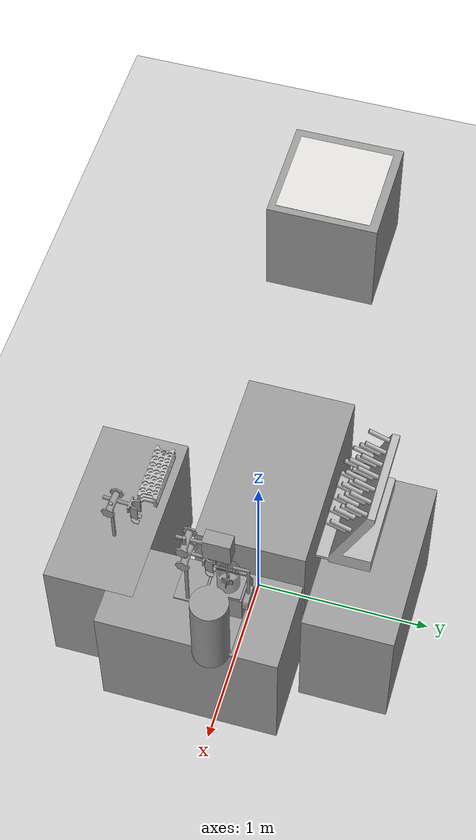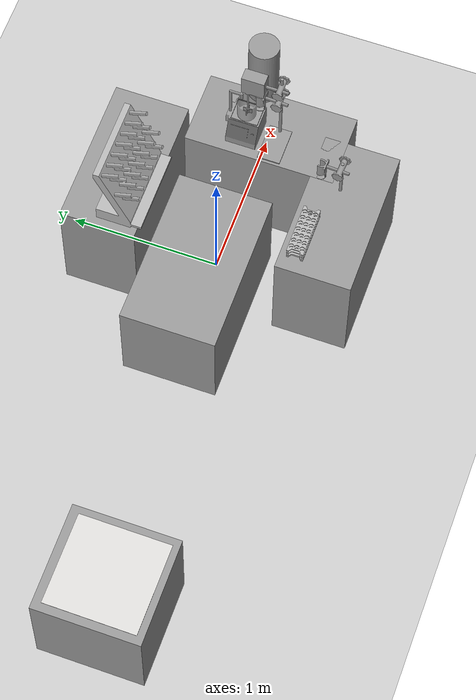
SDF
<sdf version="1.7">
 <world name="solution_preparing">
  <plugin name="gz::sim::systems::Physics" filename="gz-sim-physics-system"/>
  <plugin name="gz::sim::systems::UserCommands" filename="gz-sim-user-commands-system"/>
  <plugin name="gz::sim::systems::SceneBroadcaster" filename="gz-sim-scene-broadcaster-system"/>
  <light name="sun" type="directional">
   <pose>0 0 10 0 -0 0</pose>
   <diffuse>0.8 0.8 0.8 1</diffuse>
   <specular>0.2 0.2 0.2 1</specular>
   <attenuation>
    <range>1000</range>
    <constant>0.9</constant>
    <linear>0.01</linear>
    <quadratic>0.001</quadratic>
   </attenuation>
   <direction>-0.5 0.1 -0.9</direction>
   <spot><inner_angle>0</inner_angle><outer_angle>0</outer_angle><falloff>0</falloff></spot>
  </light>
  <model name="ground_plane">
   <static>1</static>
   <link name="link">
    <collision name="collision">
     <geometry><plane><normal>0 0 1</normal><size>1 1</size></plane></geometry>
    </collision>
    <visual name="visual">
     <geometry><plane><normal>0 0 1</normal><size>100 100</size></plane></geometry>
     <material>
      <ambient>0.8 0.8 0.8 1</ambient>
      <diffuse>0.8 0.8 0.8 1</diffuse>
      <specular>0.8 0.8 0.8 1</specular>
     </material>
    </visual>
   </link>
  </model>
  <model name="tube_tripod">
   <pose>-0.039065 -0.591932 0.8 0 -0 0</pose>
   <static>1</static>
   <link name="link">
    <collision name="collision">
     <geometry>
      <mesh><uri>file://models/solution_preparing/tube_tripod.stl</uri><scale>1 1 1</scale></mesh>
     </geometry>
    </collision>
    <visual name="visual">
     <geometry>
      <mesh><uri>file://models/solution_preparing/tube_tripod.stl</uri><scale>1 1 1</scale></mesh>
     </geometry>
    </visual>
    <kinematic>1</kinematic>
   </link>
  </model>
  <model name="dryer">
   <pose>-0.067665 0.651488 0.8 0 0 -1.5708</pose>
   <static>1</static>
   <link name="link">
    <collision name="collision">
     <geometry><mesh><uri>file://models/solution_preparing/dryer.stl</uri><scale>1 1 1</scale></mesh></geometry>
    </collision>
    <visual name="visual">
     <geometry><mesh><uri>file://models/solution_preparing/dryer.stl</uri><scale>1 1 1</scale></mesh></geometry>
    </visual>
    <kinematic>1</kinematic>
   </link>
  </model>
  <model name="beaker_2l">
   <static>1</static>
   <link name="link">
    <collision name="collision">
     <geometry><mesh><uri>file://models/solution_preparing/beaker.stl</uri><scale>1 1 1</scale></mesh></geometry>
    </collision>
    <visual name="visual">
     <geometry><mesh><uri>file://models/solution_preparing/beaker.stl</uri><scale>1 1 1</scale></mesh></geometry>
    </visual>
    <kinematic>1</kinematic>
   </link>
  </model>
  <gravity>0 0 -9.8</gravity>
  <magnetic_field>6e-06 2.3e-05 -4.2e-05</magnetic_field>
  <atmosphere type="adiabatic"/>
  <physics type="ode">
   <max_step_size>0.001</max_step_size>
   <real_time_factor>1</real_time_factor>
   <real_time_update_rate>1000</real_time_update_rate>
  </physics>
  <scene><ambient>0.4 0.4 0.4 1</ambient><background>0.7 0.7 0.7 1</background><shadows>1</shadows></scene>
  <audio><device>default</device></audio>
  <spherical_coordinates>
   <surface_model>EARTH_WGS84</surface_model>
   <latitude_deg>0</latitude_deg>
   <longitude_deg>0</longitude_deg>
   <elevation>0</elevation>
   <heading_deg>0</heading_deg>
  </spherical_coordinates>
  <model name="mobile_platform">
   <link name="link_0">
    <inertial>
     <mass>390</mass>
     <inertia><ixx>28.8242</ixx><ixy>0</ixy><ixz>0</ixz><iyy>53.833</iyy><iyz>0</iyz><izz>50.8073</izz></inertia>
    </inertial>
    <kinematic>1</kinematic>
    <visual name="visual">
     <geometry><box><size>1.08 0.63 0.7</size></box></geometry>
     <material>
      <lighting>1</lighting>
      <script><uri>file://media/materials/scripts/gazebo.material</uri><name>Gazebo/Grey</name></script>
      <shader type="pixel"><normal_map>__default__</normal_map></shader>
      <ambient>0.3 0.3 0.3 1</ambient>
      <diffuse>0.7 0.7 0.7 1</diffuse>
      <specular>0.01 0.01 0.01 1</specular>
      <emissive>0 0 0 1</emissive>
     </material>
    </visual>
    <collision name="collision">
     <geometry><box><size>1.08 0.63 0.7</size></box></geometry>
     <surface>
      <friction>
       <ode><mu>1</mu><mu2>1</mu2><fdir1>0 0 0</fdir1><slip1>0</slip1><slip2>0</slip2></ode>
       <torsional>
        <coefficient>1</coefficient>
        <patch_radius>0</patch_radius>
        <surface_radius>0</surface_radius>
        <use_patch_radius>1</use_patch_radius>
        <ode><slip>0</slip></ode>
       </torsional>
      </friction>
      <bounce><restitution_coefficient>0</restitution_coefficient><threshold>1e+06</threshold></bounce>
      <contact>
       <collide_without_contact>0</collide_without_contact>
       <collide_without_contact_bitmask>1</collide_without_contact_bitmask>
       <collide_bitmask>1</collide_bitmask>
       <ode>
        <soft_cfm>0</soft_cfm>
        <soft_erp>0.2</soft_erp>
        <kp>1e+13</kp>
        <kd>1</kd>
        <max_vel>0.01</max_vel>
        <min_depth>0</min_depth>
       </ode>
       <bullet>
        <split_impulse>1</split_impulse>
        <split_impulse_penetration_threshold>-0.01</split_impulse_penetration_threshold>
        <soft_cfm>0</soft_cfm>
        <soft_erp>0.2</soft_erp>
        <kp>1e+13</kp>
        <kd>1</kd>
       </bullet>
      </contact>
     </surface>
    </collision>
   </link>
   <static>0</static>
   <pose>-0.361419 0 0.35 0 -0 0</pose>
  </model>
  <model name="vibrostol">
   <link name="link">
    <inertial>
     <mass>1</mass>
     <inertia>
      <ixx>0.166667</ixx>
      <ixy>0</ixy>
      <ixz>0</ixz>
      <iyy>0.166667</iyy>
      <iyz>0</iyz>
      <izz>0.166667</izz>
     </inertia>
    </inertial>
    <kinematic>1</kinematic>
    <visual name="visual">
     <geometry><box><size>0.7 0.7 0.7</size></box></geometry>
     <material>
      <script><name>Gazebo/Grey</name><uri>file://media/materials/scripts/gazebo.material</uri></script>
      <shader type="pixel"><normal_map>__default__</normal_map></shader>
      <ambient>0.3 0.3 0.3 1</ambient>
      <diffuse>0.7 0.7 0.7 1</diffuse>
      <specular>0.01 0.01 0.01 1</specular>
      <emissive>0 0 0 1</emissive>
     </material>
    </visual>
    <collision name="collision">
     <geometry><box><size>0.7 0.7 0.7</size></box></geometry>
     <surface>
      <friction>
       <ode><mu>1</mu><mu2>1</mu2><fdir1>0 0 0</fdir1><slip1>0</slip1><slip2>0</slip2></ode>
       <torsional>
        <coefficient>1</coefficient>
        <patch_radius>0</patch_radius>
        <surface_radius>0</surface_radius>
        <use_patch_radius>1</use_patch_radius>
        <ode><slip>0</slip></ode>
       </torsional>
      </friction>
      <bounce><restitution_coefficient>0</restitution_coefficient><threshold>1e+06</threshold></bounce>
      <contact>
       <collide_without_contact>0</collide_without_contact>
       <collide_without_contact_bitmask>1</collide_without_contact_bitmask>
       <collide_bitmask>1</collide_bitmask>
       <ode>
        <soft_cfm>0</soft_cfm>
        <soft_erp>0.2</soft_erp>
        <kp>1e+13</kp>
        <kd>1</kd>
        <max_vel>0.01</max_vel>
        <min_depth>0</min_depth>
       </ode>
       <bullet>
        <split_impulse>1</split_impulse>
        <split_impulse_penetration_threshold>-0.01</split_impulse_penetration_threshold>
        <soft_cfm>0</soft_cfm>
        <soft_erp>0.2</soft_erp>
        <kp>1e+13</kp>
        <kd>1</kd>
       </bullet>
      </contact>
     </surface>
    </collision>
   </link>
   <static>0</static>
   <pose>-2.53046 -0.225356 0.35 0 -0 0</pose>
  </model>
  <model name="table">
   <link name="link">
    <inertial>
     <mass>1</mass>
     <inertia>
      <ixx>0.166667</ixx>
      <ixy>0</ixy>
      <ixz>0</ixz>
      <iyy>0.166667</iyy>
      <iyz>0</iyz>
      <izz>0.166667</izz>
     </inertia>
    </inertial>
    <kinematic>1</kinematic>
    <visual name="visual">
     <geometry><box><size>1 0.5 0.8</size></box></geometry>
     <material>
      <script><name>Gazebo/Grey</name><uri>file://media/materials/scripts/gazebo.material</uri></script>
      <shader type="pixel"><normal_map>__default__</normal_map></shader>
      <ambient>0.3 0.3 0.3 1</ambient>
      <diffuse>0.7 0.7 0.7 1</diffuse>
      <specular>0.01 0.01 0.01 1</specular>
      <emissive>0 0 0 1</emissive>
     </material>
    </visual>
    <collision name="collision">
     <geometry><box><size>1 0.5 0.8</size></box></geometry>
     <surface>
      <friction>
       <ode><mu>1</mu><mu2>1</mu2><fdir1>0 0 0</fdir1><slip1>0</slip1><slip2>0</slip2></ode>
       <torsional>
        <coefficient>1</coefficient>
        <patch_radius>0</patch_radius>
        <surface_radius>0</surface_radius>
        <use_patch_radius>1</use_patch_radius>
        <ode><slip>0</slip></ode>
       </torsional>
      </friction>
      <bounce><restitution_coefficient>0</restitution_coefficient><threshold>1e+06</threshold></bounce>
      <contact>
       <collide_without_contact>0</collide_without_contact>
       <collide_without_contact_bitmask>1</collide_without_contact_bitmask>
       <collide_bitmask>1</collide_bitmask>
       <ode>
        <soft_cfm>0</soft_cfm>
        <soft_erp>0.2</soft_erp>
        <kp>1e+13</kp>
        <kd>1</kd>
        <max_vel>0.01</max_vel>
        <min_depth>0</min_depth>
       </ode>
       <bullet>
        <split_impulse>1</split_impulse>
        <split_impulse_penetration_threshold>-0.01</split_impulse_penetration_threshold>
        <soft_cfm>0</soft_cfm>
        <soft_erp>0.2</soft_erp>
        <kp>1e+13</kp>
        <kd>1</kd>
       </bullet>
      </contact>
     </surface>
    </collision>
   </link>
   <static>0</static>
   <pose>0.199661 -0.741404 0.4 0 -0 0</pose>
  </model>
  <model name="table_clone">
   <link name="link">
    <inertial>
     <mass>1</mass>
     <inertia>
      <ixx>0.166667</ixx>
      <ixy>0</ixy>
      <ixz>0</ixz>
      <iyy>0.166667</iyy>
      <iyz>0</iyz>
      <izz>0.166667</izz>
     </inertia>
    </inertial>
    <kinematic>1</kinematic>
    <visual name="visual">
     <geometry><box><size>1 0.5 0.8</size></box></geometry>
     <material>
      <script><name>Gazebo/Grey</name><uri>file://media/materials/scripts/gazebo.material</uri></script>
      <shader type="pixel"><normal_map>__default__</normal_map></shader>
      <ambient>0.3 0.3 0.3 1</ambient>
      <diffuse>0.7 0.7 0.7 1</diffuse>
      <specular>0.01 0.01 0.01 1</specular>
      <emissive>0 0 0 1</emissive>
     </material>
    </visual>
    <collision name="collision">
     <geometry><box><size>1 0.5 0.8</size></box></geometry>
     <surface>
      <friction>
       <ode><mu>1</mu><mu2>1</mu2><fdir1>0 0 0</fdir1><slip1>0</slip1><slip2>0</slip2></ode>
       <torsional>
        <coefficient>1</coefficient>
        <patch_radius>0</patch_radius>
        <surface_radius>0</surface_radius>
        <use_patch_radius>1</use_patch_radius>
        <ode><slip>0</slip></ode>
       </torsional>
      </friction>
      <bounce><restitution_coefficient>0</restitution_coefficient><threshold>1e+06</threshold></bounce>
      <contact>
       <collide_without_contact>0</collide_without_contact>
       <collide_without_contact_bitmask>1</collide_without_contact_bitmask>
       <collide_bitmask>1</collide_bitmask>
       <ode>
        <soft_cfm>0</soft_cfm>
        <soft_erp>0.2</soft_erp>
        <kp>1e+13</kp>
        <kd>1</kd>
        <max_vel>0.01</max_vel>
        <min_depth>0</min_depth>
       </ode>
       <bullet>
        <split_impulse>1</split_impulse>
        <split_impulse_penetration_threshold>-0.01</split_impulse_penetration_threshold>
        <soft_cfm>0</soft_cfm>
        <soft_erp>0.2</soft_erp>
        <kp>1e+13</kp>
        <kd>1</kd>
       </bullet>
      </contact>
     </surface>
    </collision>
   </link>
   <static>0</static>
   <pose>0.640523 -0.14245 0.4 0 0 -1.5708</pose>
  </model>
  <model name="table_clone_0">
   <link name="link">
    <inertial>
     <mass>1</mass>
     <inertia>
      <ixx>0.166667</ixx>
      <ixy>0</ixy>
      <ixz>0</ixz>
      <iyy>0.166667</iyy>
      <iyz>0</iyz>
      <izz>0.166667</izz>
     </inertia>
    </inertial>
    <kinematic>1</kinematic>
    <visual name="visual">
     <geometry><box><size>1 0.5 0.8</size></box></geometry>
     <material>
      <script><name>Gazebo/Grey</name><uri>file://media/materials/scripts/gazebo.material</uri></script>
      <shader type="pixel"><normal_map>__default__</normal_map></shader>
      <ambient>0.3 0.3 0.3 1</ambient>
      <diffuse>0.7 0.7 0.7 1</diffuse>
      <specular>0.01 0.01 0.01 1</specular>
      <emissive>0 0 0 1</emissive>
     </material>
    </visual>
    <collision name="collision">
     <geometry><box><size>1 0.5 0.8</size></box></geometry>
     <surface>
      <friction>
       <ode><mu>1</mu><mu2>1</mu2><fdir1>0 0 0</fdir1><slip1>0</slip1><slip2>0</slip2></ode>
       <torsional>
        <coefficient>1</coefficient>
        <patch_radius>0</patch_radius>
        <surface_radius>0</surface_radius>
        <use_patch_radius>1</use_patch_radius>
        <ode><slip>0</slip></ode>
       </torsional>
      </friction>
      <bounce><restitution_coefficient>0</restitution_coefficient><threshold>1e+06</threshold></bounce>
      <contact>
       <collide_without_contact>0</collide_without_contact>
       <collide_without_contact_bitmask>1</collide_without_contact_bitmask>
       <collide_bitmask>1</collide_bitmask>
       <ode>
        <soft_cfm>0</soft_cfm>
        <soft_erp>0.2</soft_erp>
        <kp>1e+13</kp>
        <kd>1</kd>
        <max_vel>0.01</max_vel>
        <min_depth>0</min_depth>
       </ode>
       <bullet>
        <split_impulse>1</split_impulse>
        <split_impulse_penetration_threshold>-0.01</split_impulse_penetration_threshold>
        <soft_cfm>0</soft_cfm>
        <soft_erp>0.2</soft_erp>
        <kp>1e+13</kp>
        <kd>1</kd>
       </bullet>
      </contact>
     </surface>
    </collision>
   </link>
   <static>0</static>
   <pose>0.100103 0.654643 0.4 0 -0 0</pose>
  </model>
  <model name="sheet">
   <link name="link">
    <inertial>
     <mass>3</mass>
     <inertia><ixx>1</ixx><ixy>0</ixy><ixz>0</ixz><iyy>1</iyy><iyz>0</iyz><izz>1</izz></inertia>
    </inertial>
    <visual name="visual">
     <geometry><mesh><uri>file://models/sheet/meshes/sheet.stl</uri><scale>1 1 1</scale></mesh></geometry>
     <material>
      <shader type="pixel"><normal_map>__default__</normal_map></shader>
      <script><name>ModelPreview_92::link::visual_MATERIAL_</name><uri>__default__</uri></script>
      <ambient>0.871 0.867 0.855 1</ambient>
      <diffuse>0.871 0.867 0.855 1</diffuse>
      <specular>0 0 0 1</specular>
      <emissive>0 0 0 1</emissive>
     </material>
    </visual>
    <collision name="collision">
     <geometry><mesh><uri>file://models/sheet/meshes/sheet.stl</uri><scale>1 1 1</scale></mesh></geometry>
     <surface>
      <friction>
       <ode><mu>1</mu><mu2>1</mu2><fdir1>0 0 0</fdir1><slip1>0</slip1><slip2>0</slip2></ode>
       <torsional>
        <coefficient>1</coefficient>
        <patch_radius>0</patch_radius>
        <surface_radius>0</surface_radius>
        <use_patch_radius>1</use_patch_radius>
        <ode><slip>0</slip></ode>
       </torsional>
      </friction>
      <bounce><restitution_coefficient>0</restitution_coefficient><threshold>1e+06</threshold></bounce>
      <contact>
       <collide_without_contact>0</collide_without_contact>
       <collide_without_contact_bitmask>1</collide_without_contact_bitmask>
       <collide_bitmask>1</collide_bitmask>
       <ode>
        <soft_cfm>0</soft_cfm>
        <soft_erp>0.2</soft_erp>
        <kp>1e+13</kp>
        <kd>1</kd>
        <max_vel>0.01</max_vel>
        <min_depth>0</min_depth>
       </ode>
       <bullet>
        <split_impulse>1</split_impulse>
        <split_impulse_penetration_threshold>-0.01</split_impulse_penetration_threshold>
        <soft_cfm>0</soft_cfm>
        <soft_erp>0.2</soft_erp>
        <kp>1e+13</kp>
        <kd>1</kd>
       </bullet>
      </contact>
     </surface>
    </collision>
   </link>
   <static>0</static>
   <pose>-2.52946 -0.22767 0.699964 4e-06 -9e-06 0.00105</pose>
  </model>
  <model name="water_dispenser">
   <link name="link_0">
    <inertial>
     <mass>3</mass>
     <inertia>
      <ixx>0.166667</ixx>
      <ixy>0</ixy>
      <ixz>0</ixz>
      <iyy>0.166667</iyy>
      <iyz>0</iyz>
      <izz>0.166667</izz>
     </inertia>
    </inertial>
    <kinematic>1</kinematic>
    <visual name="visual">
     <geometry>
      <mesh><uri>file://models/water_dispenser/meshes/water_dispenser.stl</uri><scale>1 1 1</scale></mesh>
     </geometry>
     <material>
      <lighting>1</lighting>
      <script><uri>file://media/materials/scripts/gazebo.material</uri><name>Gazebo/Grey</name></script>
      <shader type="pixel"><normal_map>__default__</normal_map></shader>
      <ambient>0.871 0.867 0.855 1</ambient>
      <diffuse>0.871 0.867 0.855 1</diffuse>
      <specular>0.01 0.01 0.01 1</specular>
      <emissive>0 0 0 1</emissive>
     </material>
    </visual>
    <collision name="collision">
     <geometry>
      <mesh><uri>file://models/water_dispenser/meshes/water_dispenser.stl</uri><scale>1 1 1</scale></mesh>
     </geometry>
     <surface>
      <friction>
       <ode><mu>1</mu><mu2>1</mu2><fdir1>0 0 0</fdir1><slip1>0</slip1><slip2>0</slip2></ode>
       <torsional>
        <coefficient>1</coefficient>
        <patch_radius>0</patch_radius>
        <surface_radius>0</surface_radius>
        <use_patch_radius>1</use_patch_radius>
        <ode><slip>0</slip></ode>
       </torsional>
      </friction>
      <bounce><restitution_coefficient>0</restitution_coefficient><threshold>1e+06</threshold></bounce>
      <contact>
       <collide_without_contact>0</collide_without_contact>
       <collide_without_contact_bitmask>1</collide_without_contact_bitmask>
       <collide_bitmask>1</collide_bitmask>
       <ode>
        <soft_cfm>0</soft_cfm>
        <soft_erp>0.2</soft_erp>
        <kp>1e+13</kp>
        <kd>1</kd>
        <max_vel>0.01</max_vel>
        <min_depth>0</min_depth>
       </ode>
       <bullet>
        <split_impulse>1</split_impulse>
        <split_impulse_penetration_threshold>-0.01</split_impulse_penetration_threshold>
        <soft_cfm>0</soft_cfm>
        <soft_erp>0.2</soft_erp>
        <kp>1e+13</kp>
        <kd>1</kd>
       </bullet>
      </contact>
     </surface>
    </collision>
   </link>
   <link name="link_0_0">
    <inertial>
     <mass>1</mass>
     <inertia>
      <ixx>0.166667</ixx>
      <ixy>0</ixy>
      <ixz>0</ixz>
      <iyy>0.166667</iyy>
      <iyz>0</iyz>
      <izz>0.166667</izz>
     </inertia>
    </inertial>
    <pose>-0.021678 0.16339 0.287125 0 -0 1.52721</pose>
    <visual name="visual">
     <geometry>
      <mesh><uri>file://models/water_dispenser/meshes/dispenser_holder.stl</uri><scale>1 1 1</scale></mesh>
     </geometry>
     <material>
      <lighting>1</lighting>
      <script><uri>file://media/materials/scripts/gazebo.material</uri><name>Gazebo/Grey</name></script>
      <shader type="pixel"><normal_map>__default__</normal_map></shader>
      <emissive>0 0 0 1</emissive>
      <ambient>0.3 0.3 0.3 1</ambient>
      <diffuse>0.7 0.7 0.7 1</diffuse>
      <specular>0.01 0.01 0.01 1</specular>
     </material>
    </visual>
    <collision name="collision">
     <geometry>
      <mesh><uri>file://models/water_dispenser/meshes/dispenser_holder.stl</uri><scale>1 1 1</scale></mesh>
     </geometry>
     <surface>
      <friction>
       <ode><mu>1</mu><mu2>1</mu2><fdir1>0 0 0</fdir1><slip1>0</slip1><slip2>0</slip2></ode>
       <torsional>
        <coefficient>1</coefficient>
        <patch_radius>0</patch_radius>
        <surface_radius>0</surface_radius>
        <use_patch_radius>1</use_patch_radius>
        <ode><slip>0</slip></ode>
       </torsional>
      </friction>
      <bounce><restitution_coefficient>0</restitution_coefficient><threshold>1e+06</threshold></bounce>
      <contact>
       <collide_without_contact>0</collide_without_contact>
       <collide_without_contact_bitmask>1</collide_without_contact_bitmask>
       <collide_bitmask>1</collide_bitmask>
       <ode>
        <soft_cfm>0</soft_cfm>
        <soft_erp>0.2</soft_erp>
        <kp>1e+13</kp>
        <kd>1</kd>
        <max_vel>0.01</max_vel>
        <min_depth>0</min_depth>
       </ode>
       <bullet>
        <split_impulse>1</split_impulse>
        <split_impulse_penetration_threshold>-0.01</split_impulse_penetration_threshold>
        <soft_cfm>0</soft_cfm>
        <soft_erp>0.2</soft_erp>
        <kp>1e+13</kp>
        <kd>1</kd>
       </bullet>
      </contact>
     </surface>
    </collision>
   </link>
   <link name="link_1">
    <inertial>
     <mass>3</mass>
     <inertia>
      <ixx>0.166667</ixx>
      <ixy>0</ixy>
      <ixz>0</ixz>
      <iyy>0.166667</iyy>
      <iyz>0</iyz>
      <izz>0.166667</izz>
     </inertia>
    </inertial>
    <kinematic>1</kinematic>
    <visual name="visual">
     <geometry>
      <mesh><uri>file://models/water_dispenser/meshes/tripod.stl</uri><scale>1 1 1</scale></mesh>
     </geometry>
     <material>
      <lighting>1</lighting>
      <script><uri>file://media/materials/scripts/gazebo.material</uri><name>Gazebo/Grey</name></script>
      <shader type="pixel"><normal_map>__default__</normal_map></shader>
      <ambient>0.3 0.3 0.3 1</ambient>
      <diffuse>0.7 0.7 0.7 1</diffuse>
      <specular>0.01 0.01 0.01 1</specular>
      <emissive>0 0 0 1</emissive>
     </material>
    </visual>
    <collision name="collision">
     <geometry>
      <mesh><uri>file://models/water_dispenser/meshes/tripod.stl</uri><scale>1 1 1</scale></mesh>
     </geometry>
     <surface>
      <friction>
       <ode><mu>1</mu><mu2>1</mu2><fdir1>0 0 0</fdir1><slip1>0</slip1><slip2>0</slip2></ode>
       <torsional>
        <coefficient>1</coefficient>
        <patch_radius>0</patch_radius>
        <surface_radius>0</surface_radius>
        <use_patch_radius>1</use_patch_radius>
        <ode><slip>0</slip></ode>
       </torsional>
      </friction>
      <bounce><restitution_coefficient>0</restitution_coefficient><threshold>1e+06</threshold></bounce>
      <contact>
       <collide_without_contact>0</collide_without_contact>
       <collide_without_contact_bitmask>1</collide_without_contact_bitmask>
       <collide_bitmask>1</collide_bitmask>
       <ode>
        <soft_cfm>0</soft_cfm>
        <soft_erp>0.2</soft_erp>
        <kp>1e+13</kp>
        <kd>1</kd>
        <max_vel>0.01</max_vel>
        <min_depth>0</min_depth>
       </ode>
       <bullet>
        <split_impulse>1</split_impulse>
        <split_impulse_penetration_threshold>-0.01</split_impulse_penetration_threshold>
        <soft_cfm>0</soft_cfm>
        <soft_erp>0.2</soft_erp>
        <kp>1e+13</kp>
        <kd>1</kd>
       </bullet>
      </contact>
     </surface>
    </collision>
   </link>
   <link name="link_2">
    <inertial>
     <mass>0.3</mass>
     <inertia>
      <ixx>0.166667</ixx>
      <ixy>0</ixy>
      <ixz>0</ixz>
      <iyy>0.166667</iyy>
      <iyz>0</iyz>
      <izz>0.166667</izz>
     </inertia>
    </inertial>
    <pose>0 0 0.01 0 -0 0</pose>
    <visual name="visual">
     <geometry>
      <mesh><uri>file://models/water_dispenser/meshes/nozzle.stl</uri><scale>1 1 1</scale></mesh>
     </geometry>
     <material>
      <lighting>1</lighting>
      <script><uri>file://media/materials/scripts/gazebo.material</uri><name>Gazebo/Grey</name></script>
      <shader type="pixel"><normal_map>__default__</normal_map></shader>
      <ambient>1 1 1 1</ambient>
      <diffuse>1 1 1 1</diffuse>
      <specular>0.01 0.01 0.01 1</specular>
      <emissive>0 0 0 1</emissive>
     </material>
    </visual>
    <collision name="collision">
     <geometry>
      <mesh><uri>file://models/water_dispenser/meshes/nozzle.stl</uri><scale>1 1 1</scale></mesh>
     </geometry>
     <surface>
      <friction>
       <ode><mu>1</mu><mu2>1</mu2><fdir1>0 0 0</fdir1><slip1>0</slip1><slip2>0</slip2></ode>
       <torsional>
        <coefficient>1</coefficient>
        <patch_radius>0</patch_radius>
        <surface_radius>0</surface_radius>
        <use_patch_radius>1</use_patch_radius>
        <ode><slip>0</slip></ode>
       </torsional>
      </friction>
      <bounce><restitution_coefficient>0</restitution_coefficient><threshold>1e+06</threshold></bounce>
      <contact>
       <collide_without_contact>0</collide_without_contact>
       <collide_without_contact_bitmask>1</collide_without_contact_bitmask>
       <collide_bitmask>1</collide_bitmask>
       <ode>
        <soft_cfm>0</soft_cfm>
        <soft_erp>0.2</soft_erp>
        <kp>1e+13</kp>
        <kd>1</kd>
        <max_vel>0.01</max_vel>
        <min_depth>0</min_depth>
       </ode>
       <bullet>
        <split_impulse>1</split_impulse>
        <split_impulse_penetration_threshold>-0.01</split_impulse_penetration_threshold>
        <soft_cfm>0</soft_cfm>
        <soft_erp>0.2</soft_erp>
        <kp>1e+13</kp>
        <kd>1</kd>
       </bullet>
      </contact>
     </surface>
    </collision>
   </link>
   <link name="link_3">
    <inertial>
     <mass>1.5</mass>
     <inertia>
      <ixx>0.166667</ixx>
      <ixy>0</ixy>
      <ixz>0</ixz>
      <iyy>0.166667</iyy>
      <iyz>0</iyz>
      <izz>0.166667</izz>
     </inertia>
    </inertial>
    <visual name="visual">
     <geometry>
      <mesh><uri>file://models/water_dispenser/meshes/mixer.stl</uri><scale>1 1 1</scale></mesh>
     </geometry>
     <material>
      <lighting>1</lighting>
      <script><uri>file://media/materials/scripts/gazebo.material</uri><name>Gazebo/Grey</name></script>
      <shader type="pixel"><normal_map>__default__</normal_map></shader>
      <ambient>0.753 0.749 0.737 1</ambient>
      <diffuse>0.753 0.749 0.737 1</diffuse>
      <specular>0.01 0.01 0.01 1</specular>
      <emissive>0 0 0 1</emissive>
     </material>
    </visual>
    <collision name="collision">
     <geometry>
      <mesh><uri>file://models/water_dispenser/meshes/mixer.stl</uri><scale>1 1 1</scale></mesh>
     </geometry>
     <surface>
      <friction>
       <ode><mu>1</mu><mu2>1</mu2><fdir1>0 0 0</fdir1><slip1>0</slip1><slip2>0</slip2></ode>
       <torsional>
        <coefficient>1</coefficient>
        <patch_radius>0</patch_radius>
        <surface_radius>0</surface_radius>
        <use_patch_radius>1</use_patch_radius>
        <ode><slip>0</slip></ode>
       </torsional>
      </friction>
      <bounce><restitution_coefficient>0</restitution_coefficient><threshold>1e+06</threshold></bounce>
      <contact>
       <collide_without_contact>0</collide_without_contact>
       <collide_without_contact_bitmask>1</collide_without_contact_bitmask>
       <collide_bitmask>1</collide_bitmask>
       <ode>
        <soft_cfm>0</soft_cfm>
        <soft_erp>0.2</soft_erp>
        <kp>1e+13</kp>
        <kd>1</kd>
        <max_vel>0.01</max_vel>
        <min_depth>0</min_depth>
       </ode>
       <bullet>
        <split_impulse>1</split_impulse>
        <split_impulse_penetration_threshold>-0.01</split_impulse_penetration_threshold>
        <soft_cfm>0</soft_cfm>
        <soft_erp>0.2</soft_erp>
        <kp>1e+13</kp>
        <kd>1</kd>
       </bullet>
      </contact>
     </surface>
    </collision>
   </link>
   <joint name="mixer_nozzle" type="revolute">
    <parent>link_3</parent>
    <child>link_2</child>
    <pose>0 -0.0015 0.42 0 -0 0</pose>
    <axis>
     <xyz>0 0 1</xyz>
     <limit>
      <lower>-1.79769e+308</lower>
      <upper>1.79769e+308</upper>
      <effort>-1</effort>
      <velocity>-1</velocity>
     </limit>
     <dynamics>
      <spring_reference>0</spring_reference>
      <spring_stiffness>0</spring_stiffness>
      <damping>0</damping>
      <friction>0</friction>
     </dynamics>
    </axis>
    <physics>
     <ode><limit><cfm>0</cfm><erp>0.2</erp></limit><suspension><cfm>0</cfm><erp>0.2</erp></suspension></ode>
    </physics>
   </joint>
   <joint name="mixer_tripod" type="prismatic">
    <parent>link_1</parent>
    <child>link_3</child>
    <pose>-0.04 0.205 0.54 0 -0 0</pose>
    <axis>
     <xyz>0 0 1</xyz>
     <limit><lower>-1</lower><upper>1</upper><effort>-1</effort><velocity>-1</velocity></limit>
     <dynamics>
      <spring_reference>0</spring_reference>
      <spring_stiffness>0</spring_stiffness>
      <damping>0</damping>
      <friction>50</friction>
     </dynamics>
    </axis>
    <physics>
     <ode><limit><cfm>0</cfm><erp>0.2</erp></limit><suspension><cfm>0</cfm><erp>0.2</erp></suspension></ode>
    </physics>
   </joint>
   <joint name="tip_holder_tripod" type="prismatic">
    <parent>link_1</parent>
    <child>link_0_0</child>
    <pose>0.04 0.0205 0.12 0 -0 0</pose>
    <axis>
     <xyz>0 0 1</xyz>
     <limit><lower>-1</lower><upper>1</upper><effort>-1</effort><velocity>-1</velocity></limit>
     <dynamics>
      <spring_reference>0</spring_reference>
      <spring_stiffness>0</spring_stiffness>
      <damping>0</damping>
      <friction>10</friction>
     </dynamics>
    </axis>
    <physics>
     <ode><limit><cfm>0</cfm><erp>0.2</erp></limit><suspension><cfm>0</cfm><erp>0.2</erp></suspension></ode>
    </physics>
   </joint>
   <static>0</static>
   <pose>0.591179 0 0.8 0 -0 3.14159</pose>
  </model>
  <model name="dispenser_holder">
   <link name="link_1">
    <inertial>
     <mass>1</mass>
     <inertia>
      <ixx>0.166667</ixx>
      <ixy>0</ixy>
      <ixz>0</ixz>
      <iyy>0.166667</iyy>
      <iyz>0</iyz>
      <izz>0.166667</izz>
     </inertia>
    </inertial>
    <pose>-2.05802 -0.75236 0.638104 0 3e-06 -1.61448</pose>
    <visual name="visual">
     <geometry>
      <mesh><uri>file://models/dispenser_holder/meshes/dispenser_holder.stl</uri><scale>1 1 1</scale></mesh>
     </geometry>
     <material>
      <lighting>1</lighting>
      <script><uri>file://media/materials/scripts/gazebo.material</uri><name>Gazebo/Grey</name></script>
      <shader type="pixel"><normal_map>__default__</normal_map></shader>
      <emissive>0 0 0 1</emissive>
      <ambient>0.3 0.3 0.3 1</ambient>
      <diffuse>0.7 0.7 0.7 1</diffuse>
      <specular>0.01 0.01 0.01 1</specular>
     </material>
    </visual>
    <collision name="collision">
     <geometry>
      <mesh><uri>file://models/dispenser_holder/meshes/dispenser_holder.stl</uri><scale>1 1 1</scale></mesh>
     </geometry>
     <surface>
      <friction>
       <ode><mu>1</mu><mu2>1</mu2><fdir1>0 0 0</fdir1><slip1>0</slip1><slip2>0</slip2></ode>
       <torsional>
        <coefficient>1</coefficient>
        <patch_radius>0</patch_radius>
        <surface_radius>0</surface_radius>
        <use_patch_radius>1</use_patch_radius>
        <ode><slip>0</slip></ode>
       </torsional>
      </friction>
      <bounce><restitution_coefficient>0</restitution_coefficient><threshold>1e+06</threshold></bounce>
      <contact>
       <collide_without_contact>0</collide_without_contact>
       <collide_without_contact_bitmask>1</collide_without_contact_bitmask>
       <collide_bitmask>1</collide_bitmask>
       <ode>
        <soft_cfm>0</soft_cfm>
        <soft_erp>0.2</soft_erp>
        <kp>1e+13</kp>
        <kd>1</kd>
        <max_vel>0.01</max_vel>
        <min_depth>0</min_depth>
       </ode>
       <bullet>
        <split_impulse>1</split_impulse>
        <split_impulse_penetration_threshold>-0.01</split_impulse_penetration_threshold>
        <soft_cfm>0</soft_cfm>
        <soft_erp>0.2</soft_erp>
        <kp>1e+13</kp>
        <kd>1</kd>
       </bullet>
      </contact>
     </surface>
    </collision>
   </link>
   <link name="link_2">
    <inertial>
     <mass>1</mass>
     <inertia>
      <ixx>0.166667</ixx>
      <ixy>0</ixy>
      <ixz>0</ixz>
      <iyy>0.166667</iyy>
      <iyz>0</iyz>
      <izz>0.166667</izz>
     </inertia>
     <pose>0.12 0.08 0 0 -0 0</pose>
    </inertial>
    <pose>-2 -1 0.168643 0 -0 0</pose>
    <kinematic>1</kinematic>
    <visual name="visual">
     <geometry>
      <mesh><uri>file://models/dispenser_holder/meshes/tripod.stl</uri><scale>1 1 1</scale></mesh>
     </geometry>
     <material>
      <lighting>1</lighting>
      <script><uri>file://media/materials/scripts/gazebo.material</uri><name>Gazebo/Grey</name></script>
      <shader type="pixel"><normal_map>__default__</normal_map></shader>
      <emissive>0 0 0 1</emissive>
      <ambient>0.3 0.3 0.3 1</ambient>
      <diffuse>0.7 0.7 0.7 1</diffuse>
      <specular>0.01 0.01 0.01 1</specular>
     </material>
    </visual>
    <collision name="collision">
     <geometry>
      <mesh><uri>file://models/dispenser_holder/meshes/tripod.stl</uri><scale>1 1 1</scale></mesh>
     </geometry>
     <surface>
      <friction>
       <ode><mu>1</mu><mu2>1</mu2><fdir1>0 0 0</fdir1><slip1>0</slip1><slip2>0</slip2></ode>
       <torsional>
        <coefficient>1</coefficient>
        <patch_radius>0</patch_radius>
        <surface_radius>0</surface_radius>
        <use_patch_radius>1</use_patch_radius>
        <ode><slip>0</slip></ode>
       </torsional>
      </friction>
      <bounce><restitution_coefficient>0</restitution_coefficient><threshold>1e+06</threshold></bounce>
      <contact>
       <collide_without_contact>0</collide_without_contact>
       <collide_without_contact_bitmask>1</collide_without_contact_bitmask>
       <collide_bitmask>1</collide_bitmask>
       <ode>
        <soft_cfm>0</soft_cfm>
        <soft_erp>0.2</soft_erp>
        <kp>1e+13</kp>
        <kd>1</kd>
        <max_vel>0.01</max_vel>
        <min_depth>0</min_depth>
       </ode>
       <bullet>
        <split_impulse>1</split_impulse>
        <split_impulse_penetration_threshold>-0.01</split_impulse_penetration_threshold>
        <soft_cfm>0</soft_cfm>
        <soft_erp>0.2</soft_erp>
        <kp>1e+13</kp>
        <kd>1</kd>
       </bullet>
      </contact>
     </surface>
    </collision>
   </link>
   <joint name="link_2_JOINT_0" type="prismatic">
    <parent>link_2</parent>
    <child>link_1</child>
    <pose>0.04 0.02 0.13 0 -0 0</pose>
    <axis>
     <xyz>0 0 1</xyz>
     <limit><lower>-0.5</lower><upper>0</upper><effort>-1</effort><velocity>-1</velocity></limit>
     <dynamics>
      <spring_reference>0</spring_reference>
      <spring_stiffness>0</spring_stiffness>
      <damping>0</damping>
      <friction>10</friction>
     </dynamics>
    </axis>
    <physics>
     <ode><limit><cfm>0</cfm><erp>0.2</erp></limit><suspension><cfm>0</cfm><erp>0.2</erp></suspension></ode>
    </physics>
   </joint>
   <static>0</static>
   <pose>2.4 0.090001 0.324229 0 -0 0</pose>
  </model>
  <model name="beaker_0">
   <link name="link_0">
    <inertial>
     <mass>0.7</mass>
     <inertia>
      <ixx>0.166667</ixx>
      <ixy>0</ixy>
      <ixz>0</ixz>
      <iyy>0.166667</iyy>
      <iyz>0</iyz>
      <izz>0.166667</izz>
     </inertia>
    </inertial>
    <visual name="visual">
     <geometry><mesh><uri>file://models/beaker/meshes/beaker.stl</uri><scale>1 1 1</scale></mesh></geometry>
     <material>
      <lighting>1</lighting>
      <script><uri>file://media/materials/scripts/gazebo.material</uri><name>Gazebo/Grey</name></script>
      <shader type="pixel"><normal_map>__default__</normal_map></shader>
      <ambient>0.965 0.961 0.957 1</ambient>
      <diffuse>0.965 0.961 0.957 1</diffuse>
      <specular>0.01 0.01 0.01 1</specular>
      <emissive>0 0 0 1</emissive>
     </material>
     <transparency>0.4</transparency>
    </visual>
    <collision name="collision">
     <geometry><mesh><uri>file://models/beaker/meshes/beaker.stl</uri><scale>1 1 1</scale></mesh></geometry>
     <surface>
      <friction>
       <ode><mu>1</mu><mu2>1</mu2><fdir1>0 0 0</fdir1><slip1>0</slip1><slip2>0</slip2></ode>
       <torsional>
        <coefficient>1</coefficient>
        <patch_radius>0</patch_radius>
        <surface_radius>0</surface_radius>
        <use_patch_radius>1</use_patch_radius>
        <ode><slip>0</slip></ode>
       </torsional>
      </friction>
      <bounce><restitution_coefficient>0</restitution_coefficient><threshold>1e+06</threshold></bounce>
      <contact>
       <collide_without_contact>0</collide_without_contact>
       <collide_without_contact_bitmask>1</collide_without_contact_bitmask>
       <collide_bitmask>1</collide_bitmask>
       <ode>
        <soft_cfm>0</soft_cfm>
        <soft_erp>0.2</soft_erp>
        <kp>1e+13</kp>
        <kd>1</kd>
        <max_vel>0.01</max_vel>
        <min_depth>0</min_depth>
       </ode>
       <bullet>
        <split_impulse>1</split_impulse>
        <split_impulse_penetration_threshold>-0.01</split_impulse_penetration_threshold>
        <soft_cfm>0</soft_cfm>
        <soft_erp>0.2</soft_erp>
        <kp>1e+13</kp>
        <kd>1</kd>
       </bullet>
      </contact>
     </surface>
    </collision>
   </link>
   <static>0</static>
   <pose>0.58426 0.004154 0.989782 0 -0 -3e-06</pose>
  </model>
 </world>
</sdf>
